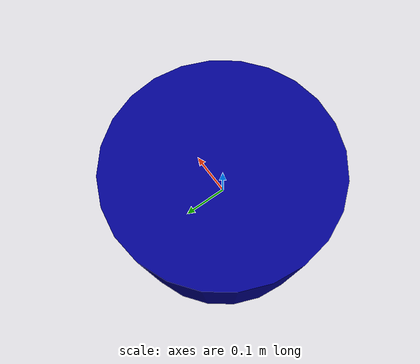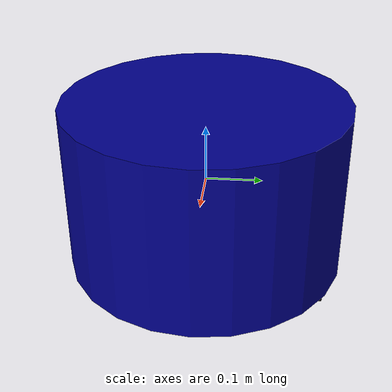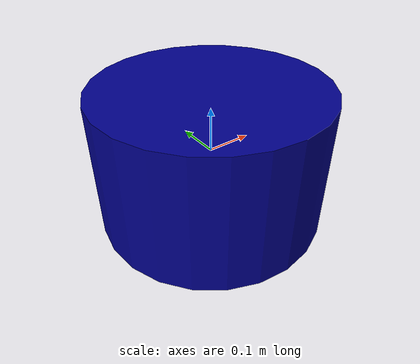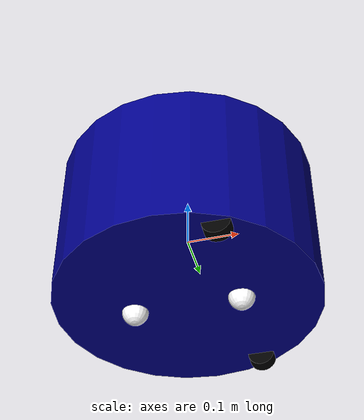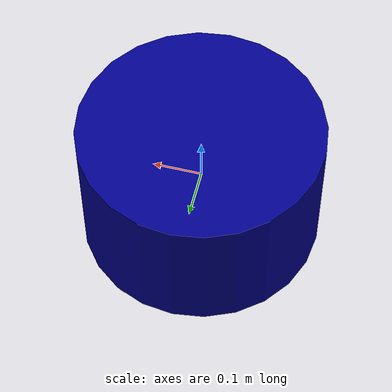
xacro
<?xml version="1.0"?>
<robot xmlns:xacro="http://www.ros.org/wiki/xacro" name="my_rb1">

    <!--
    'front_laser' link must be located at (0.25, 0.0, 0.075) from the 'base_link'.
    Also the link must be rotated 180º in the `x` axis, this means, the laser is upside-down.
    -->
    <xacro:property name="front_laser_x" value="0.25"/>
    <xacro:property name="front_laser_y" value="0.0"/>
    <xacro:property name="front_laser_z" value="0.075"/>
    <xacro:property name="front_laser_roll" value="3.14"/>
    <xacro:property name="front_laser_pitch" value="0"/>
    <xacro:property name="front_laser_yaw" value="0"/>

    <!-- All 4 wheels have the same mass -->
    <xacro:property name="wheel_mass" value="0.25"/>
    <xacro:property name="caster_mass" value="${wheel_mass}"/>
    <xacro:property name="wheel_count" value="2"/>
    <xacro:property name="wheel_mass_total" value="${wheel_count * wheel_mass}"/>
    <xacro:property name="caster_count" value="2"/>
    <xacro:property name="caster_mass_total" value="${caster_count * caster_mass}"/>
    <xacro:property name="base_cylinder_mass" value="${25 - (wheel_mass_total + caster_mass_total)}"/>

    <!-- Properties -->
	<xacro:property name="caster_mu1" value="0"/>
    <xacro:property name="caster_mu2" value="0"/>

    <xacro:property name="wheel_kp" value="1000000.0"/>
    <xacro:property name="wheel_kd" value="100.0"/>
    <xacro:property name="wheel_mu1" value="1.0"/>
    <xacro:property name="wheel_mu2" value="1.0"/>

    <!-- The robot is a cylinder 50 cm in diameter and 30 cm in height -->
    <xacro:property name="base_cylinder_radius" value="0.25"/>
    <xacro:property name="base_cylinder_height" value="0.3"/>

    <!-- Has 2 wheels of 5 cm diameter on each side of the base. One at (0.1, -0.2, -0.15)
         from the base_link and another at (0.1, 0.2, -0.15). -->
    <xacro:property name="wheel_radius" value="0.025"/>
    <xacro:property name="wheel_height" value="0.025"/>
    <xacro:property name="wheel_x" value="0.1"/>
    <xacro:property name="left_wheel_y" value="-0.2"/>
    <xacro:property name="wheel_z" value="-0.15"/>
    <xacro:property name="wheel_roll" value="1.57"/>
    <xacro:property name="wheel_pitch" value="0"/>
    <xacro:property name="wheel_yaw" value="0"/>

    <xacro:property name="caster_radius" value="0.025"/>
    <xacro:property name="front_caster_x" value="0.1"/>
    <xacro:property name="caster_y" value="0"/>
    <xacro:property name="caster_z" value="-0.15"/>

    <material name="dark_blue">
        <color rgba="0 0 0.55 1"/>
    </material>

    <material name="black">
        <color rgba="0 0 0 1"/>
    </material>

    <material name="white">
        <color rgba="1 1 1 1"/>
    </material>

    <!-- base cylinder XACRO -->
    <xacro:macro name="base_cylinder">

        <link name="base_link">
        </link>

        <link name="base_footprint">
        </link>

        <link name="front_laser">
        </link>

        <link name="base_cylinder_link">
            <inertial>
                <origin xyz="0 0 0" rpy="0 0 0"/>
                <mass value="${base_cylinder_mass}" />
                <xacro:cylinder_inertia mass="${base_cylinder_mass}"
                    r="${base_cylinder_radius}"
                    l="${base_cylinder_height}"
                />
            </inertial>
            <collision>
                <origin xyz="0 0 0" rpy="0 0 0"/>
                <geometry>
                    <cylinder radius="${base_cylinder_radius}" length="${base_cylinder_height}"/>
                </geometry>
            </collision>
            <visual>
                <origin rpy="0.0 0 0" xyz="0 0 0"/>
                <geometry>
                    <cylinder radius="${base_cylinder_radius}" length="${base_cylinder_height}"/>
                </geometry>
                <material name="dark_blue"/>
            </visual>
        </link>

        <gazebo reference="base_cylinder_link">
            <material>Gazebo/Blue</material>
        </gazebo>

        <joint name="base_cylinder_base_link_joint" type="fixed">
            <parent link="base_link"/>
            <child link="base_cylinder_link"/>
            <origin rpy="0.0 0 0" xyz="0 0 0"/>
        </joint>

        <joint name="base_footprint_base_link_joint" type="fixed">
            <parent link="base_link"/>
            <child link="base_footprint"/>
            <origin rpy="0.0 0 0" xyz="0 0 ${base_cylinder_height * -0.5}"/>
        </joint>

        <joint name="front_laser_base_link_joint" type="fixed">
            <parent link="base_link"/>
            <child link="front_laser"/>
            <origin
                xyz="${front_laser_x} ${front_laser_y} ${front_laser_z}"
                rpy="${front_laser_roll} ${front_laser_pitch} ${front_laser_yaw}"/>
        </joint>

    </xacro:macro>

    <xacro:macro name="wheel" params="side">
        <xacro:property name="multiplier" value="${-1 if side == 'right' else 1}"/>
        <xacro:property name="current_wheel_name" value="${side}_wheel_link"/>
        <link name="${current_wheel_name}">
            <inertial>
                <origin xyz="0 0 0" rpy="0 0 0"/>
                <mass value="${wheel_mass}" />
                <xacro:cylinder_inertia mass="${wheel_mass}"
                    r="${wheel_radius}"
                    l="${wheel_height}"
                />
            </inertial>
            <collision>
                <origin xyz="0 0 0" rpy="0 0 0"/>
                <geometry>
                    <cylinder radius="${wheel_radius}" length="${wheel_height}"/>
                </geometry>
            </collision>
            <visual>
                <origin rpy="0 0 0" xyz="0 0 0"/>
                <geometry>
                    <cylinder radius="${wheel_radius}" length="${wheel_height}"/>
                </geometry>
                <material name="black"/>
            </visual>
        </link>

        <gazebo reference="${current_wheel_name}">
            <material>Gazebo/Black</material>
            <kp>${wheel_kp}</kp>
            <kd>${wheel_kd}</kd>
            <mu1>${wheel_mu1}</mu1>
            <mu2>${wheel_mu2}</mu2>
        </gazebo>

        <joint name="${current_wheel_name}_base_link_joint" type="continuous">
            <parent link="base_link"/>
            <child link="${current_wheel_name}"/>
            <origin xyz="${wheel_x} ${multiplier * left_wheel_y} ${wheel_z}" rpy="${wheel_roll} ${wheel_pitch} ${wheel_yaw}" />
             <axis xyz="0 0 1"/>
        </joint>
    </xacro:macro>

    <xacro:macro name="caster" params="side">
        <xacro:property name="multiplier" value="${-1 if side == 'front' else 1}"/>
        <xacro:property name="current_caster_name" value="${side}_caster_link"/>
        <link name="${current_caster_name}">
            <inertial>
                <origin xyz="0 0 0" rpy="0 0 0"/>
                <mass value="${caster_mass}" />
                <xacro:sphere_inertia mass="${caster_mass}"
                    r="${caster_radius}"
                />
            </inertial>
            <collision>
                <origin xyz="0 0 0" rpy="0 0 0"/>
                <geometry>
                    <sphere radius="${caster_radius}"/>
                </geometry>
            </collision>
            <visual>
                <origin rpy="0 0 0" xyz="0 0 0"/>
                <geometry>
                    <sphere radius="${caster_radius}"/>
                </geometry>
                <material name="white"/>
            </visual>
        </link>

        <gazebo reference="${current_caster_name}">
            <mu1>${caster_mu1}</mu1>
            <mu2>${caster_mu2}</mu2>
            <material>Gazebo/White</material>
        </gazebo>

        <joint name="${current_caster_name}_base_link_joint" type="fixed">
            <parent link="base_link"/>
            <child link="${current_caster_name}"/>
            <origin
                xyz="${multiplier * front_caster_x} ${caster_y}  ${caster_z}"
                rpy="0 0 0" />
        </joint>

        <gazebo reference="${current_caster_name}">
            <preserveFixedJoint>true</preserveFixedJoint>
        </gazebo>
    </xacro:macro>

    <!-- Math Usefull MACROS-->
    <xacro:macro  name="cylinder_inertia" params="mass r l">
      <inertia  ixx="${mass*(3*r*r+l*l)/12}" ixy = "0" ixz = "0"
                iyy="${mass*(3*r*r+l*l)/12}" iyz = "0"
                izz="${mass*(r*r)/2}" />
    </xacro:macro >

    <xacro:macro name="box_inertia" params="mass x y z">
      <inertia  ixx="${mass*(y*y+z*z)/12}" ixy = "0" ixz = "0"
                iyy="${mass*(x*x+z*z)/12}" iyz = "0"
                izz="${mass*(x*x+z*z)/12}"
      />
    </xacro:macro>

    <xacro:macro name="sphere_inertia" params="mass r">
        <inertia
            ixx="${2*mass*r*r/5}" ixy = "0" ixz = "0"
            iyy="${2*mass*r*r/5}" iyz = "0"
            izz="${2*mass*r*r/5}"
        />
    </xacro:macro>

    <gazebo>
        <plugin filename="libgazebo_ros_diff_drive.so" name="differential_drive_controller">
            <alwaysOn>true</alwaysOn>
            <updateRate>20</updateRate>
            <leftJoint>left_wheel_link_base_link_joint</leftJoint>
            <rightJoint>right_wheel_link_base_link_joint</rightJoint>
            <wheelSeparation>${left_wheel_y * 2.0}</wheelSeparation>
            <wheelDiameter>${wheel_radius * 2.0}</wheelDiameter>
            <torque>10</torque>
            <commandTopic>cmd_vel</commandTopic>
            <odometryTopic>odom</odometryTopic>
            <odometryFrame>odom</odometryFrame>
            <robotBaseFrame>base_link</robotBaseFrame>
        </plugin>
    </gazebo>

    <gazebo reference="front_laser">
        <sensor type="ray" name="head_hokuyo_sensor">
            <pose>0 0 0 0 0 0</pose>
            <visualize>true</visualize>
            <update_rate>20</update_rate>
            <ray>
                <scan>
                    <horizontal>
                        <samples>720</samples>
                        <resolution>1</resolution>
                        <min_angle>-1.570796</min_angle>
                        <max_angle>1.570796</max_angle>
                    </horizontal>
                </scan>
                <range>
                    <min>0.20</min>
                    <max>10.0</max>
                    <resolution>0.01</resolution>
                </range>
                <noise>
                    <type>gaussian</type>
                    <mean>0.0</mean>
                    <stddev>0.01</stddev>
                </noise>
            </ray>
            <plugin name="gazebo_ros_head_hokuyo_controller" filename="libgazebo_ros_laser.so">
                <topicName>/scan</topicName>
                <frameName>sensor_laser</frameName>
            </plugin>
        </sensor>
    </gazebo>

    <xacro:base_cylinder />

    <xacro:wheel side="left" />
    <xacro:wheel side="right" />
    <xacro:caster side="front" />
    <xacro:caster side="back" />

</robot>
